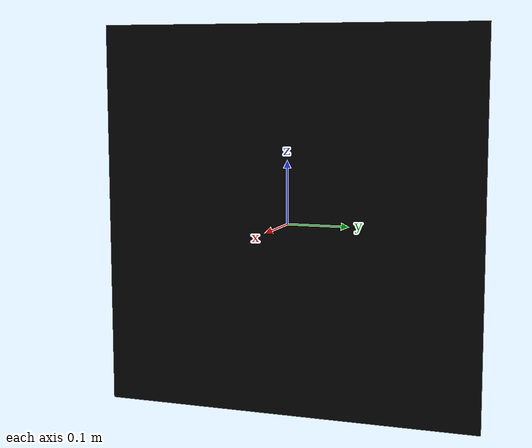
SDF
<?xml version="1.0" encoding="UTF-8"?>
<sdf version='1.9'>
  <model name='apriltag_target'>
    <static>true</static>
    <link name='base'>
      <visual name='base_visual'>
        <pose>0 0 0 0 -1.5708 0</pose>
        <geometry>
          <plane>
            <normal>0 0 1</normal>
            <size>0.625 0.625</size>
          </plane>
        </geometry>
        <material>
          <ambient>0 0 0 1</ambient>
          <diffuse>0 0 0 1</diffuse>
          <specular>0 0 0 1</specular>
          <pbr>
            <metal>
              <albedo_map>model://apriltag_target/tag36h11_00000.png</albedo_map>
              <emissive_map>model://apriltag_target/tag36h11_00000.png</emissive_map>
              <roughness>1.0</roughness>
              <metalness>0.0</metalness>
            </metal>
          </pbr>
        </material>
      </visual>
    </link>
  </model>
</sdf>
